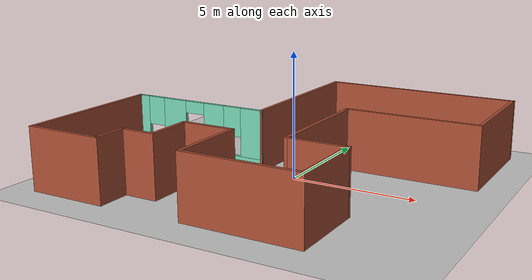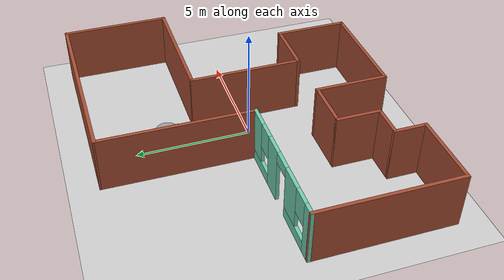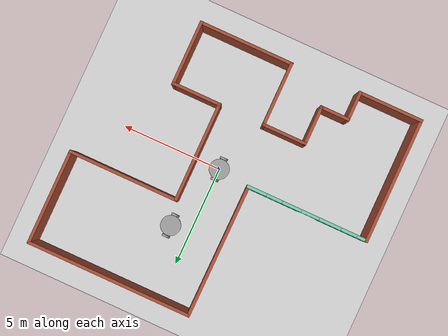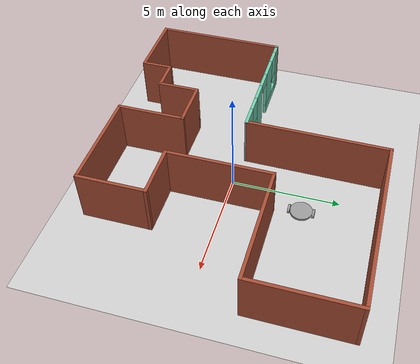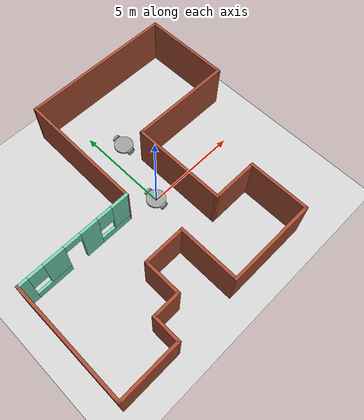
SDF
<sdf version="1.7">
 <world name="default">
  <plugin name="welcome_message" filename="libwelcome_message.so"/>
  <light name="sun" type="directional">
   <pose>0 0 10 0 -0 0</pose>
   <diffuse>0.8 0.8 0.8 1</diffuse>
   <specular>0.2 0.2 0.2 1</specular>
   <attenuation>
    <range>1000</range>
    <constant>0.9</constant>
    <linear>0.01</linear>
    <quadratic>0.001</quadratic>
   </attenuation>
   <direction>-0.5 0.1 -0.9</direction>
   <spot><inner_angle>0</inner_angle><outer_angle>0</outer_angle><falloff>0</falloff></spot>
  </light>
  <model name="ground_plane">
   <static>1</static>
   <link name="link">
    <collision name="collision">
     <geometry><plane><normal>0 0 1</normal><size>100 100</size></plane></geometry>
     <surface>
      <contact><collide_bitmask>65535</collide_bitmask></contact>
      <friction><ode><mu>100</mu><mu2>50</mu2></ode></friction>
     </surface>
    </collision>
    <visual name="visual">
     <cast_shadows>0</cast_shadows>
     <geometry><plane><normal>0 0 1</normal><size>100 100</size></plane></geometry>
     <material>
      <script><uri>file://media/materials/scripts/gazebo.material</uri><name>Gazebo/Grey</name></script>
     </material>
    </visual>
   </link>
  </model>
  <gravity>0 0 -9.8</gravity>
  <magnetic_field>6e-06 2.3e-05 -4.2e-05</magnetic_field>
  <atmosphere type="adiabatic"/>
  <physics type="ode">
   <max_step_size>0.001</max_step_size>
   <real_time_factor>1</real_time_factor>
   <real_time_update_rate>1000</real_time_update_rate>
  </physics>
  <scene><ambient>0.4 0.4 0.4 1</ambient><background>0.7 0.7 0.7 1</background><shadows>1</shadows></scene>
  <spherical_coordinates>
   <surface_model>EARTH_WGS84</surface_model>
   <latitude_deg>0</latitude_deg>
   <longitude_deg>0</longitude_deg>
   <elevation>0</elevation>
   <heading_deg>0</heading_deg>
  </spherical_coordinates>
  <model name="HumanoidRobot">
   <link name="link_0">
    <inertial>
     <mass>1</mass>
     <inertia><ixx>0.145833</ixx><ixy>0</ixy><ixz>0</ixz><iyy>0.145833</iyy><iyz>0</iyz><izz>0.125</izz></inertia>
    </inertial>
    <visual name="visual">
     <geometry><cylinder><radius>0.5</radius><length>0.1</length></cylinder></geometry>
     <material>
      <lighting>1</lighting>
      <script><uri>file://media/materials/scripts/gazebo.material</uri><name>Gazebo/Grey</name></script>
      <shader type="pixel"><normal_map>__default__</normal_map></shader>
      <ambient>0.3 0.3 0.3 1</ambient>
      <diffuse>0.7 0.7 0.7 1</diffuse>
      <specular>0.01 0.01 0.01 1</specular>
      <emissive>0 0 0 1</emissive>
     </material>
    </visual>
    <collision name="collision">
     <geometry><cylinder><radius>0.5</radius><length>0.1</length></cylinder></geometry>
     <surface>
      <friction>
       <ode><mu>1</mu><mu2>1</mu2><fdir1>0 0 0</fdir1><slip1>0</slip1><slip2>0</slip2></ode>
       <torsional>
        <coefficient>1</coefficient>
        <patch_radius>0</patch_radius>
        <surface_radius>0</surface_radius>
        <use_patch_radius>1</use_patch_radius>
        <ode><slip>0</slip></ode>
       </torsional>
      </friction>
      <bounce><restitution_coefficient>0</restitution_coefficient><threshold>1e+06</threshold></bounce>
      <contact>
       <collide_without_contact>0</collide_without_contact>
       <collide_without_contact_bitmask>1</collide_without_contact_bitmask>
       <collide_bitmask>1</collide_bitmask>
       <ode>
        <soft_cfm>0</soft_cfm>
        <soft_erp>0.2</soft_erp>
        <kp>1e+13</kp>
        <kd>1</kd>
        <max_vel>0.01</max_vel>
        <min_depth>0</min_depth>
       </ode>
       <bullet>
        <split_impulse>1</split_impulse>
        <split_impulse_penetration_threshold>-0.01</split_impulse_penetration_threshold>
        <soft_cfm>0</soft_cfm>
        <soft_erp>0.2</soft_erp>
        <kp>1e+13</kp>
        <kd>1</kd>
       </bullet>
      </contact>
     </surface>
    </collision>
   </link>
   <link name="link_1">
    <inertial>
     <mass>1</mass>
     <inertia><ixx>0.145833</ixx><ixy>0</ixy><ixz>0</ixz><iyy>0.145833</iyy><iyz>0</iyz><izz>0.125</izz></inertia>
    </inertial>
    <pose>0 -0.550019 0 1.5707 -0 0</pose>
    <visual name="visual">
     <geometry><cylinder><radius>0.2</radius><length>0.1</length></cylinder></geometry>
     <material>
      <lighting>1</lighting>
      <script><uri>file://media/materials/scripts/gazebo.material</uri><name>Gazebo/Grey</name></script>
      <shader type="pixel"><normal_map>__default__</normal_map></shader>
      <ambient>0.3 0.3 0.3 1</ambient>
      <diffuse>0.7 0.7 0.7 1</diffuse>
      <specular>0.01 0.01 0.01 1</specular>
      <emissive>0 0 0 1</emissive>
     </material>
    </visual>
    <collision name="collision">
     <geometry><cylinder><radius>0.2</radius><length>0.1</length></cylinder></geometry>
     <surface>
      <friction>
       <ode><mu>1</mu><mu2>1</mu2><fdir1>0 0 0</fdir1><slip1>0</slip1><slip2>0</slip2></ode>
       <torsional>
        <coefficient>1</coefficient>
        <patch_radius>0</patch_radius>
        <surface_radius>0</surface_radius>
        <use_patch_radius>1</use_patch_radius>
        <ode><slip>0</slip></ode>
       </torsional>
      </friction>
      <bounce><restitution_coefficient>0</restitution_coefficient><threshold>1e+06</threshold></bounce>
      <contact>
       <collide_without_contact>0</collide_without_contact>
       <collide_without_contact_bitmask>1</collide_without_contact_bitmask>
       <collide_bitmask>1</collide_bitmask>
       <ode>
        <soft_cfm>0</soft_cfm>
        <soft_erp>0.2</soft_erp>
        <kp>1e+13</kp>
        <kd>1</kd>
        <max_vel>0.01</max_vel>
        <min_depth>0</min_depth>
       </ode>
       <bullet>
        <split_impulse>1</split_impulse>
        <split_impulse_penetration_threshold>-0.01</split_impulse_penetration_threshold>
        <soft_cfm>0</soft_cfm>
        <soft_erp>0.2</soft_erp>
        <kp>1e+13</kp>
        <kd>1</kd>
       </bullet>
      </contact>
     </surface>
    </collision>
   </link>
   <link name="link_1_clone">
    <inertial>
     <mass>1</mass>
     <inertia><ixx>0.145833</ixx><ixy>0</ixy><ixz>0</ixz><iyy>0.145833</iyy><iyz>0</iyz><izz>0.125</izz></inertia>
    </inertial>
    <pose>0 0.550019 0 1.5707 -0 0</pose>
    <visual name="visual">
     <geometry><cylinder><radius>0.2</radius><length>0.1</length></cylinder></geometry>
     <material>
      <lighting>1</lighting>
      <script><uri>file://media/materials/scripts/gazebo.material</uri><name>Gazebo/Grey</name></script>
      <shader type="pixel"><normal_map>__default__</normal_map></shader>
      <ambient>0.3 0.3 0.3 1</ambient>
      <diffuse>0.7 0.7 0.7 1</diffuse>
      <specular>0.01 0.01 0.01 1</specular>
      <emissive>0 0 0 1</emissive>
     </material>
    </visual>
    <collision name="collision">
     <geometry><cylinder><radius>0.2</radius><length>0.1</length></cylinder></geometry>
     <surface>
      <friction>
       <ode><mu>1</mu><mu2>1</mu2><fdir1>0 0 0</fdir1><slip1>0</slip1><slip2>0</slip2></ode>
       <torsional>
        <coefficient>1</coefficient>
        <patch_radius>0</patch_radius>
        <surface_radius>0</surface_radius>
        <use_patch_radius>1</use_patch_radius>
        <ode><slip>0</slip></ode>
       </torsional>
      </friction>
      <bounce><restitution_coefficient>0</restitution_coefficient><threshold>1e+06</threshold></bounce>
      <contact>
       <collide_without_contact>0</collide_without_contact>
       <collide_without_contact_bitmask>1</collide_without_contact_bitmask>
       <collide_bitmask>1</collide_bitmask>
       <ode>
        <soft_cfm>0</soft_cfm>
        <soft_erp>0.2</soft_erp>
        <kp>1e+13</kp>
        <kd>1</kd>
        <max_vel>0.01</max_vel>
        <min_depth>0</min_depth>
       </ode>
       <bullet>
        <split_impulse>1</split_impulse>
        <split_impulse_penetration_threshold>-0.01</split_impulse_penetration_threshold>
        <soft_cfm>0</soft_cfm>
        <soft_erp>0.2</soft_erp>
        <kp>1e+13</kp>
        <kd>1</kd>
       </bullet>
      </contact>
     </surface>
    </collision>
   </link>
   <joint name="link_0_JOINT_0" type="revolute">
    <parent>link_0</parent>
    <child>link_1</child>
    <axis>
     <xyz>0 0 1</xyz>
     <limit>
      <lower>-1.79769e+308</lower>
      <upper>1.79769e+308</upper>
      <effort>-1</effort>
      <velocity>-1</velocity>
     </limit>
     <dynamics>
      <spring_reference>0</spring_reference>
      <spring_stiffness>0</spring_stiffness>
      <damping>0</damping>
     </dynamics>
    </axis>
    <physics>
     <ode><limit><cfm>0</cfm><erp>0.2</erp></limit><suspension><cfm>0</cfm><erp>0.2</erp></suspension></ode>
    </physics>
   </joint>
   <joint name="link_0_JOINT_1" type="revolute">
    <parent>link_0</parent>
    <child>link_1_clone</child>
    <axis>
     <xyz>0 0 1</xyz>
     <limit>
      <lower>-1.79769e+308</lower>
      <upper>1.79769e+308</upper>
      <effort>-1</effort>
      <velocity>-1</velocity>
     </limit>
     <dynamics>
      <spring_reference>0</spring_reference>
      <spring_stiffness>0</spring_stiffness>
      <damping>0</damping>
     </dynamics>
    </axis>
    <physics>
     <ode><limit><cfm>0</cfm><erp>0.2</erp></limit><suspension><cfm>0</cfm><erp>0.2</erp></suspension></ode>
    </physics>
   </joint>
   <static>0</static>
   <pose>0 -0 0.200005 0 -0 0</pose>
  </model>
  <model name="Home">
   <pose>-0.52036 0.431161 0 0 -0 0</pose>
   <link name="Wall_0">
    <pose>-4.075 -0.225285 0 0 -0 0</pose>
    <visual name="Wall_0_Visual_0">
     <pose>-2.7875 0 1.25 0 -0 0</pose>
     <geometry><box><size>0.575 0.15 2.5</size></box></geometry>
     <material>
      <script><uri>file://media/materials/scripts/gazebo.material</uri><name>Gazebo/Grey</name></script>
      <ambient>0.435294 0.796078 0.67451 1</ambient>
     </material>
     <meta><layer>0</layer></meta>
    </visual>
    <collision name="Wall_0_Collision_0">
     <geometry><box><size>0.575 0.15 2.5</size></box></geometry>
     <pose>-2.7875 0 1.25 0 -0 0</pose>
    </collision>
    <visual name="Wall_0_Visual_1">
     <pose>0.795 0 1.25 0 -0 0</pose>
     <geometry><box><size>0.97 0.15 2.5</size></box></geometry>
     <material>
      <script><uri>file://media/materials/scripts/gazebo.material</uri><name>Gazebo/Grey</name></script>
      <ambient>0.435294 0.796078 0.67451 1</ambient>
     </material>
     <meta><layer>0</layer></meta>
    </visual>
    <collision name="Wall_0_Collision_1">
     <geometry><box><size>0.97 0.15 2.5</size></box></geometry>
     <pose>0.795 0 1.25 0 -0 0</pose>
    </collision>
    <visual name="Wall_0_Visual_2">
     <pose>-1.545 0 0.25 0 -0 0</pose>
     <geometry><box><size>1.91 0.15 0.5</size></box></geometry>
     <material>
      <script><uri>file://media/materials/scripts/gazebo.material</uri><name>Gazebo/Grey</name></script>
      <ambient>0.435294 0.796078 0.67451 1</ambient>
     </material>
     <meta><layer>0</layer></meta>
    </visual>
    <collision name="Wall_0_Collision_2">
     <geometry><box><size>1.91 0.15 0.5</size></box></geometry>
     <pose>-1.545 0 0.25 0 -0 0</pose>
    </collision>
    <visual name="Wall_0_Visual_3">
     <pose>2.1775 0 0.25 0 -0 0</pose>
     <geometry><box><size>1.795 0.15 0.5</size></box></geometry>
     <material>
      <script><uri>file://media/materials/scripts/gazebo.material</uri><name>Gazebo/Grey</name></script>
      <ambient>0.435294 0.796078 0.67451 1</ambient>
     </material>
     <meta><layer>0</layer></meta>
    </visual>
    <collision name="Wall_0_Collision_3">
     <geometry><box><size>1.795 0.15 0.5</size></box></geometry>
     <pose>2.1775 0 0.25 0 -0 0</pose>
    </collision>
    <visual name="Wall_0_Visual_4">
     <pose>-1.145 0 1.5 0 -0 0</pose>
     <geometry><box><size>1.11 0.15 2</size></box></geometry>
     <material>
      <script><uri>file://media/materials/scripts/gazebo.material</uri><name>Gazebo/Grey</name></script>
      <ambient>0.435294 0.796078 0.67451 1</ambient>
     </material>
     <meta><layer>0</layer></meta>
    </visual>
    <collision name="Wall_0_Collision_4">
     <geometry><box><size>1.11 0.15 2</size></box></geometry>
     <pose>-1.145 0 1.5 0 -0 0</pose>
    </collision>
    <visual name="Wall_0_Visual_5">
     <pose>-1.145 0 1.5 0 -0 0</pose>
     <geometry><box><size>1.11 0.15 2</size></box></geometry>
     <material>
      <script><uri>file://media/materials/scripts/gazebo.material</uri><name>Gazebo/Grey</name></script>
      <ambient>0.435294 0.796078 0.67451 1</ambient>
     </material>
     <meta><layer>0</layer></meta>
    </visual>
    <collision name="Wall_0_Collision_5">
     <geometry><box><size>1.11 0.15 2</size></box></geometry>
     <pose>-1.145 0 1.5 0 -0 0</pose>
    </collision>
    <visual name="Wall_0_Visual_6">
     <pose>2.5775 0 1.5 0 -0 0</pose>
     <geometry><box><size>0.995 0.15 2</size></box></geometry>
     <material>
      <script><uri>file://media/materials/scripts/gazebo.material</uri><name>Gazebo/Grey</name></script>
      <ambient>0.435294 0.796078 0.67451 1</ambient>
     </material>
     <meta><layer>0</layer></meta>
    </visual>
    <collision name="Wall_0_Collision_6">
     <geometry><box><size>0.995 0.15 2</size></box></geometry>
     <pose>2.5775 0 1.5 0 -0 0</pose>
    </collision>
    <visual name="Wall_0_Visual_7">
     <pose>-2.1 0 1.9 0 -0 0</pose>
     <geometry><box><size>0.8 0.15 1.2</size></box></geometry>
     <material>
      <script><uri>file://media/materials/scripts/gazebo.material</uri><name>Gazebo/Grey</name></script>
      <ambient>0.435294 0.796078 0.67451 1</ambient>
     </material>
     <meta><layer>0</layer></meta>
    </visual>
    <collision name="Wall_0_Collision_7">
     <geometry><box><size>0.8 0.15 1.2</size></box></geometry>
     <pose>-2.1 0 1.9 0 -0 0</pose>
    </collision>
    <visual name="Wall_0_Visual_8">
     <pose>1.68 0 1.9 0 -0 0</pose>
     <geometry><box><size>0.8 0.15 1.2</size></box></geometry>
     <material>
      <script><uri>file://media/materials/scripts/gazebo.material</uri><name>Gazebo/Grey</name></script>
      <ambient>0.435294 0.796078 0.67451 1</ambient>
     </material>
     <meta><layer>0</layer></meta>
    </visual>
    <collision name="Wall_0_Collision_8">
     <geometry><box><size>0.8 0.15 1.2</size></box></geometry>
     <pose>1.68 0 1.9 0 -0 0</pose>
    </collision>
    <visual name="Wall_0_Visual_9">
     <pose>-0.14 0 2.25 0 -0 0</pose>
     <geometry><box><size>0.9 0.15 0.5</size></box></geometry>
     <material>
      <script><uri>file://media/materials/scripts/gazebo.material</uri><name>Gazebo/Grey</name></script>
      <ambient>0.435294 0.796078 0.67451 1</ambient>
     </material>
     <meta><layer>0</layer></meta>
    </visual>
    <collision name="Wall_0_Collision_9">
     <geometry><box><size>0.9 0.15 0.5</size></box></geometry>
     <pose>-0.14 0 2.25 0 -0 0</pose>
    </collision>
    <visual name="Wall_0_Visual_10">
     <pose>-0.14 0 2.25 0 -0 0</pose>
     <geometry><box><size>0.9 0.15 0.5</size></box></geometry>
     <material>
      <script><uri>file://media/materials/scripts/gazebo.material</uri><name>Gazebo/Grey</name></script>
      <ambient>0.435294 0.796078 0.67451 1</ambient>
     </material>
     <meta><layer>0</layer></meta>
    </visual>
    <collision name="Wall_0_Collision_10">
     <geometry><box><size>0.9 0.15 0.5</size></box></geometry>
     <pose>-0.14 0 2.25 0 -0 0</pose>
    </collision>
   </link>
   <link name="Wall_10">
    <collision name="Wall_10_Collision">
     <geometry><box><size>3.25 0.15 2.5</size></box></geometry>
     <pose>0 0 1.25 0 -0 0</pose>
    </collision>
    <visual name="Wall_10_Visual">
     <pose>0 0 1.25 0 -0 0</pose>
     <geometry><box><size>3.25 0.15 2.5</size></box></geometry>
     <material>
      <script><uri>file://media/materials/scripts/gazebo.material</uri><name>Gazebo/Bricks</name></script>
      <ambient>1 1 1 1</ambient>
     </material>
     <meta><layer>0</layer></meta>
    </visual>
    <pose>4.075 -4.67528 0 0 -0 1.5708</pose>
   </link>
   <link name="Wall_11">
    <collision name="Wall_11_Collision">
     <geometry><box><size>2.5 0.15 2.5</size></box></geometry>
     <pose>0 0 1.25 0 -0 0</pose>
    </collision>
    <visual name="Wall_11_Visual">
     <pose>0 0 1.25 0 -0 0</pose>
     <geometry><box><size>2.5 0.15 2.5</size></box></geometry>
     <material>
      <script><uri>file://media/materials/scripts/gazebo.material</uri><name>Gazebo/Bricks</name></script>
      <ambient>1 1 1 1</ambient>
     </material>
     <meta><layer>0</layer></meta>
    </visual>
    <pose>2.9 -3.12528 0 0 -0 3.14159</pose>
   </link>
   <link name="Wall_12">
    <collision name="Wall_12_Collision">
     <geometry><box><size>5 0.15 2.5</size></box></geometry>
     <pose>0 0 1.25 0 -0 0</pose>
    </collision>
    <visual name="Wall_12_Visual">
     <pose>0 0 1.25 0 -0 0</pose>
     <geometry><box><size>5 0.15 2.5</size></box></geometry>
     <material>
      <script><uri>file://media/materials/scripts/gazebo.material</uri><name>Gazebo/Bricks</name></script>
      <ambient>1 1 1 1</ambient>
     </material>
     <meta><layer>0</layer></meta>
    </visual>
    <pose>1.725 -0.700285 0 0 -0 1.5708</pose>
   </link>
   <link name="Wall_13">
    <collision name="Wall_13_Collision">
     <geometry><box><size>5.5 0.15 2.5</size></box></geometry>
     <pose>0 0 1.25 0 -0 0</pose>
    </collision>
    <visual name="Wall_13_Visual">
     <pose>0 0 1.25 0 -0 0</pose>
     <geometry><box><size>5.5 0.15 2.5</size></box></geometry>
     <material>
      <script><uri>file://media/materials/scripts/gazebo.material</uri><name>Gazebo/Bricks</name></script>
      <ambient>1 1 1 1</ambient>
     </material>
     <meta><layer>0</layer></meta>
    </visual>
    <pose>4.4 1.72471 0 0 -0 0</pose>
   </link>
   <link name="Wall_14">
    <collision name="Wall_14_Collision">
     <geometry><box><size>4.75 0.15 2.5</size></box></geometry>
     <pose>0 0 1.25 0 -0 0</pose>
    </collision>
    <visual name="Wall_14_Visual">
     <pose>0 0 1.25 0 -0 0</pose>
     <geometry><box><size>4.75 0.15 2.5</size></box></geometry>
     <material>
      <script><uri>file://media/materials/scripts/gazebo.material</uri><name>Gazebo/Bricks</name></script>
      <ambient>1 1 1 1</ambient>
     </material>
     <meta><layer>0</layer></meta>
    </visual>
    <pose>7.075 4.02471 0 0 -0 1.5708</pose>
   </link>
   <link name="Wall_15">
    <collision name="Wall_15_Collision">
     <geometry><box><size>8.25 0.15 2.5</size></box></geometry>
     <pose>0 0 1.25 0 -0 0</pose>
    </collision>
    <visual name="Wall_15_Visual">
     <pose>0 0 1.25 0 -0 0</pose>
     <geometry><box><size>8.25 0.15 2.5</size></box></geometry>
     <material>
      <script><uri>file://media/materials/scripts/gazebo.material</uri><name>Gazebo/Bricks</name></script>
      <ambient>1 1 1 1</ambient>
     </material>
     <meta><layer>0</layer></meta>
    </visual>
    <pose>3.025 6.32472 0 0 -0 3.14159</pose>
   </link>
   <link name="Wall_16">
    <collision name="Wall_16_Collision">
     <geometry><box><size>6.70019 0.15 2.5</size></box></geometry>
     <pose>0 0 1.25 0 -0 0</pose>
    </collision>
    <visual name="Wall_16_Visual">
     <pose>0 0 1.25 0 -0 0</pose>
     <geometry><box><size>6.70019 0.15 2.5</size></box></geometry>
     <material>
      <script><uri>file://media/materials/scripts/gazebo.material</uri><name>Gazebo/Bricks</name></script>
      <ambient>1 1 1 1</ambient>
     </material>
     <meta><layer>0</layer></meta>
    </visual>
    <pose>-1.05 3.04971 0 0 -0 -1.57843</pose>
   </link>
   <link name="Wall_17">
    <collision name="Wall_17_Collision">
     <geometry><box><size>0.15 0.15 2.5</size></box></geometry>
     <pose>0 0 1.25 0 -0 0</pose>
    </collision>
    <visual name="Wall_17_Visual">
     <pose>0 0 1.25 0 -0 0</pose>
     <geometry><box><size>0.15 0.15 2.5</size></box></geometry>
     <material>
      <script><uri>file://media/materials/scripts/gazebo.material</uri><name>Gazebo/Grey</name></script>
      <ambient>1 1 1 1</ambient>
     </material>
     <meta><layer>0</layer></meta>
    </visual>
    <pose>-1.075 -0.225285 0 0 -0 0</pose>
   </link>
   <link name="Wall_2">
    <collision name="Wall_2_Collision">
     <geometry><box><size>6.25 0.15 2.5</size></box></geometry>
     <pose>0 0 1.25 0 -0 0</pose>
    </collision>
    <visual name="Wall_2_Visual">
     <pose>0 0 1.25 0 -0 0</pose>
     <geometry><box><size>6.25 0.15 2.5</size></box></geometry>
     <material>
      <script><uri>file://media/materials/scripts/gazebo.material</uri><name>Gazebo/Bricks</name></script>
      <ambient>1 1 1 1</ambient>
     </material>
     <meta><layer>0</layer></meta>
    </visual>
    <pose>-7.075 -3.27528 0 0 -0 -1.5708</pose>
   </link>
   <link name="Wall_3">
    <collision name="Wall_3_Collision">
     <geometry><box><size>3.25 0.15 2.5</size></box></geometry>
     <pose>0 0 1.25 0 -0 0</pose>
    </collision>
    <visual name="Wall_3_Visual">
     <pose>0 0 1.25 0 -0 0</pose>
     <geometry><box><size>3.25 0.15 2.5</size></box></geometry>
     <material>
      <script><uri>file://media/materials/scripts/gazebo.material</uri><name>Gazebo/Bricks</name></script>
      <ambient>1 1 1 1</ambient>
     </material>
     <meta><layer>0</layer></meta>
    </visual>
    <pose>-5.525 -6.32529 0 0 -0 0</pose>
   </link>
   <link name="Wall_4">
    <collision name="Wall_4_Collision">
     <geometry><box><size>1.5 0.15 2.5</size></box></geometry>
     <pose>0 0 1.25 0 -0 0</pose>
    </collision>
    <visual name="Wall_4_Visual">
     <pose>0 0 1.25 0 -0 0</pose>
     <geometry><box><size>1.5 0.15 2.5</size></box></geometry>
     <material>
      <script><uri>file://media/materials/scripts/gazebo.material</uri><name>Gazebo/Bricks</name></script>
      <ambient>1 1 1 1</ambient>
     </material>
     <meta><layer>0</layer></meta>
    </visual>
    <pose>-3.975 -5.65029 0 0 -0 1.5708</pose>
   </link>
   <link name="Wall_5">
    <collision name="Wall_5_Collision">
     <geometry><box><size>1.5 0.15 2.5</size></box></geometry>
     <pose>0 0 1.25 0 -0 0</pose>
    </collision>
    <visual name="Wall_5_Visual">
     <pose>0 0 1.25 0 -0 0</pose>
     <geometry><box><size>1.5 0.15 2.5</size></box></geometry>
     <material>
      <script><uri>file://media/materials/scripts/gazebo.material</uri><name>Gazebo/Bricks</name></script>
      <ambient>1 1 1 1</ambient>
     </material>
     <meta><layer>0</layer></meta>
    </visual>
    <pose>-3.3 -4.97529 0 0 -0 0</pose>
   </link>
   <link name="Wall_6">
    <collision name="Wall_6_Collision">
     <geometry><box><size>2 0.15 2.5</size></box></geometry>
     <pose>0 0 1.25 0 -0 0</pose>
    </collision>
    <visual name="Wall_6_Visual">
     <pose>0 0 1.25 0 -0 0</pose>
     <geometry><box><size>2 0.15 2.5</size></box></geometry>
     <material>
      <script><uri>file://media/materials/scripts/gazebo.material</uri><name>Gazebo/Bricks</name></script>
      <ambient>1 1 1 1</ambient>
     </material>
     <meta><layer>0</layer></meta>
    </visual>
    <pose>-2.625 -4.05028 0 0 -0 1.5708</pose>
   </link>
   <link name="Wall_7">
    <collision name="Wall_7_Collision">
     <geometry><box><size>2.25 0.15 2.5</size></box></geometry>
     <pose>0 0 1.25 0 -0 0</pose>
    </collision>
    <visual name="Wall_7_Visual">
     <pose>0 0 1.25 0 -0 0</pose>
     <geometry><box><size>2.25 0.15 2.5</size></box></geometry>
     <material>
      <script><uri>file://media/materials/scripts/gazebo.material</uri><name>Gazebo/Bricks</name></script>
      <ambient>1 1 1 1</ambient>
     </material>
     <meta><layer>0</layer></meta>
    </visual>
    <pose>-1.575 -3.12528 0 0 -0 0</pose>
   </link>
   <link name="Wall_8">
    <collision name="Wall_8_Collision">
     <geometry><box><size>3.25 0.15 2.5</size></box></geometry>
     <pose>0 0 1.25 0 -0 0</pose>
    </collision>
    <visual name="Wall_8_Visual">
     <pose>0 0 1.25 0 -0 0</pose>
     <geometry><box><size>3.25 0.15 2.5</size></box></geometry>
     <material>
      <script><uri>file://media/materials/scripts/gazebo.material</uri><name>Gazebo/Bricks</name></script>
      <ambient>1 1 1 1</ambient>
     </material>
     <meta><layer>0</layer></meta>
    </visual>
    <pose>-0.525 -4.67528 0 0 -0 -1.5708</pose>
   </link>
   <link name="Wall_9">
    <collision name="Wall_9_Collision">
     <geometry><box><size>4.75 0.15 2.5</size></box></geometry>
     <pose>0 0 1.25 0 -0 0</pose>
    </collision>
    <visual name="Wall_9_Visual">
     <pose>0 0 1.25 0 -0 0</pose>
     <geometry><box><size>4.75 0.15 2.5</size></box></geometry>
     <material>
      <script><uri>file://media/materials/scripts/gazebo.material</uri><name>Gazebo/Bricks</name></script>
      <ambient>1 1 1 1</ambient>
     </material>
     <meta><layer>0</layer></meta>
    </visual>
    <pose>1.775 -6.22529 0 0 -0 0</pose>
   </link>
   <static>1</static>
  </model>
  <model name="HumanoidRobot_0">
   <link name="link_0">
    <inertial>
     <mass>1</mass>
     <inertia><ixx>0.145833</ixx><ixy>0</ixy><ixz>0</ixz><iyy>0.145833</iyy><iyz>0</iyz><izz>0.125</izz></inertia>
    </inertial>
    <visual name="visual">
     <geometry><cylinder><radius>0.5</radius><length>0.1</length></cylinder></geometry>
     <material>
      <lighting>1</lighting>
      <script><uri>file://media/materials/scripts/gazebo.material</uri><name>Gazebo/Grey</name></script>
      <shader type="pixel"><normal_map>__default__</normal_map></shader>
      <ambient>0.3 0.3 0.3 1</ambient>
      <diffuse>0.7 0.7 0.7 1</diffuse>
      <specular>0.01 0.01 0.01 1</specular>
      <emissive>0 0 0 1</emissive>
     </material>
    </visual>
    <collision name="collision">
     <geometry><cylinder><radius>0.5</radius><length>0.1</length></cylinder></geometry>
     <surface>
      <friction>
       <ode><mu>1</mu><mu2>1</mu2><fdir1>0 0 0</fdir1><slip1>0</slip1><slip2>0</slip2></ode>
       <torsional>
        <coefficient>1</coefficient>
        <patch_radius>0</patch_radius>
        <surface_radius>0</surface_radius>
        <use_patch_radius>1</use_patch_radius>
        <ode><slip>0</slip></ode>
       </torsional>
      </friction>
      <bounce><restitution_coefficient>0</restitution_coefficient><threshold>1e+06</threshold></bounce>
      <contact>
       <collide_without_contact>0</collide_without_contact>
       <collide_without_contact_bitmask>1</collide_without_contact_bitmask>
       <collide_bitmask>1</collide_bitmask>
       <ode>
        <soft_cfm>0</soft_cfm>
        <soft_erp>0.2</soft_erp>
        <kp>1e+13</kp>
        <kd>1</kd>
        <max_vel>0.01</max_vel>
        <min_depth>0</min_depth>
       </ode>
       <bullet>
        <split_impulse>1</split_impulse>
        <split_impulse_penetration_threshold>-0.01</split_impulse_penetration_threshold>
        <soft_cfm>0</soft_cfm>
        <soft_erp>0.2</soft_erp>
        <kp>1e+13</kp>
        <kd>1</kd>
       </bullet>
      </contact>
     </surface>
    </collision>
   </link>
   <link name="link_1">
    <inertial>
     <mass>1</mass>
     <inertia><ixx>0.145833</ixx><ixy>0</ixy><ixz>0</ixz><iyy>0.145833</iyy><iyz>0</iyz><izz>0.125</izz></inertia>
    </inertial>
    <pose>0 -0.550019 0 1.5707 -0 0</pose>
    <visual name="visual">
     <geometry><cylinder><radius>0.2</radius><length>0.1</length></cylinder></geometry>
     <material>
      <lighting>1</lighting>
      <script><uri>file://media/materials/scripts/gazebo.material</uri><name>Gazebo/Grey</name></script>
      <shader type="pixel"><normal_map>__default__</normal_map></shader>
      <ambient>0.3 0.3 0.3 1</ambient>
      <diffuse>0.7 0.7 0.7 1</diffuse>
      <specular>0.01 0.01 0.01 1</specular>
      <emissive>0 0 0 1</emissive>
     </material>
    </visual>
    <collision name="collision">
     <geometry><cylinder><radius>0.2</radius><length>0.1</length></cylinder></geometry>
     <surface>
      <friction>
       <ode><mu>1</mu><mu2>1</mu2><fdir1>0 0 0</fdir1><slip1>0</slip1><slip2>0</slip2></ode>
       <torsional>
        <coefficient>1</coefficient>
        <patch_radius>0</patch_radius>
        <surface_radius>0</surface_radius>
        <use_patch_radius>1</use_patch_radius>
        <ode><slip>0</slip></ode>
       </torsional>
      </friction>
      <bounce><restitution_coefficient>0</restitution_coefficient><threshold>1e+06</threshold></bounce>
      <contact>
       <collide_without_contact>0</collide_without_contact>
       <collide_without_contact_bitmask>1</collide_without_contact_bitmask>
       <collide_bitmask>1</collide_bitmask>
       <ode>
        <soft_cfm>0</soft_cfm>
        <soft_erp>0.2</soft_erp>
        <kp>1e+13</kp>
        <kd>1</kd>
        <max_vel>0.01</max_vel>
        <min_depth>0</min_depth>
       </ode>
       <bullet>
        <split_impulse>1</split_impulse>
        <split_impulse_penetration_threshold>-0.01</split_impulse_penetration_threshold>
        <soft_cfm>0</soft_cfm>
        <soft_erp>0.2</soft_erp>
        <kp>1e+13</kp>
        <kd>1</kd>
       </bullet>
      </contact>
     </surface>
    </collision>
   </link>
   <link name="link_1_clone">
    <inertial>
     <mass>1</mass>
     <inertia><ixx>0.145833</ixx><ixy>0</ixy><ixz>0</ixz><iyy>0.145833</iyy><iyz>0</iyz><izz>0.125</izz></inertia>
    </inertial>
    <pose>0 0.550019 0 1.5707 -0 0</pose>
    <visual name="visual">
     <geometry><cylinder><radius>0.2</radius><length>0.1</length></cylinder></geometry>
     <material>
      <lighting>1</lighting>
      <script><uri>file://media/materials/scripts/gazebo.material</uri><name>Gazebo/Grey</name></script>
      <shader type="pixel"><normal_map>__default__</normal_map></shader>
      <ambient>0.3 0.3 0.3 1</ambient>
      <diffuse>0.7 0.7 0.7 1</diffuse>
      <specular>0.01 0.01 0.01 1</specular>
      <emissive>0 0 0 1</emissive>
     </material>
    </visual>
    <collision name="collision">
     <geometry><cylinder><radius>0.2</radius><length>0.1</length></cylinder></geometry>
     <surface>
      <friction>
       <ode><mu>1</mu><mu2>1</mu2><fdir1>0 0 0</fdir1><slip1>0</slip1><slip2>0</slip2></ode>
       <torsional>
        <coefficient>1</coefficient>
        <patch_radius>0</patch_radius>
        <surface_radius>0</surface_radius>
        <use_patch_radius>1</use_patch_radius>
        <ode><slip>0</slip></ode>
       </torsional>
      </friction>
      <bounce><restitution_coefficient>0</restitution_coefficient><threshold>1e+06</threshold></bounce>
      <contact>
       <collide_without_contact>0</collide_without_contact>
       <collide_without_contact_bitmask>1</collide_without_contact_bitmask>
       <collide_bitmask>1</collide_bitmask>
       <ode>
        <soft_cfm>0</soft_cfm>
        <soft_erp>0.2</soft_erp>
        <kp>1e+13</kp>
        <kd>1</kd>
        <max_vel>0.01</max_vel>
        <min_depth>0</min_depth>
       </ode>
       <bullet>
        <split_impulse>1</split_impulse>
        <split_impulse_penetration_threshold>-0.01</split_impulse_penetration_threshold>
        <soft_cfm>0</soft_cfm>
        <soft_erp>0.2</soft_erp>
        <kp>1e+13</kp>
        <kd>1</kd>
       </bullet>
      </contact>
     </surface>
    </collision>
   </link>
   <joint name="link_0_JOINT_0" type="revolute">
    <parent>link_0</parent>
    <child>link_1</child>
    <axis>
     <xyz>0 0 1</xyz>
     <limit>
      <lower>-1.79769e+308</lower>
      <upper>1.79769e+308</upper>
      <effort>-1</effort>
      <velocity>-1</velocity>
     </limit>
     <dynamics>
      <spring_reference>0</spring_reference>
      <spring_stiffness>0</spring_stiffness>
      <damping>0</damping>
     </dynamics>
    </axis>
    <physics>
     <ode><limit><cfm>0</cfm><erp>0.2</erp></limit><suspension><cfm>0</cfm><erp>0.2</erp></suspension></ode>
    </physics>
   </joint>
   <joint name="link_0_JOINT_1" type="revolute">
    <parent>link_0</parent>
    <child>link_1_clone</child>
    <axis>
     <xyz>0 0 1</xyz>
     <limit>
      <lower>-1.79769e+308</lower>
      <upper>1.79769e+308</upper>
      <effort>-1</effort>
      <velocity>-1</velocity>
     </limit>
     <dynamics>
      <spring_reference>0</spring_reference>
      <spring_stiffness>0</spring_stiffness>
      <damping>0</damping>
     </dynamics>
    </axis>
    <physics>
     <ode><limit><cfm>0</cfm><erp>0.2</erp></limit><suspension><cfm>0</cfm><erp>0.2</erp></suspension></ode>
    </physics>
   </joint>
   <static>0</static>
   <pose>0.996946 3.42998 0.200005 0 -1.9e-05 8.3e-05</pose>
  </model>
 </world>
</sdf>
